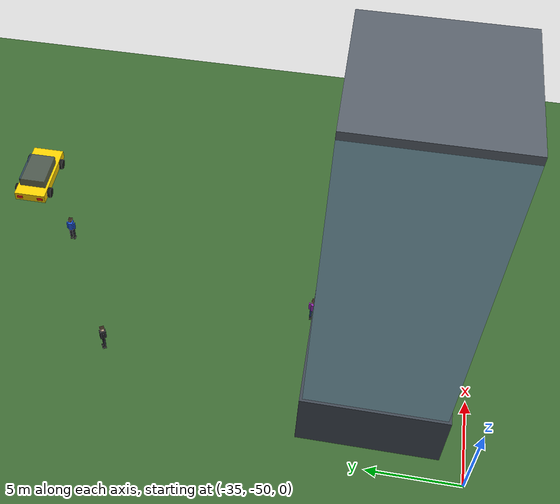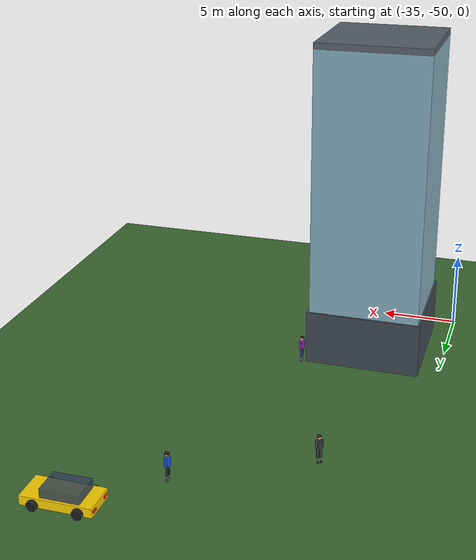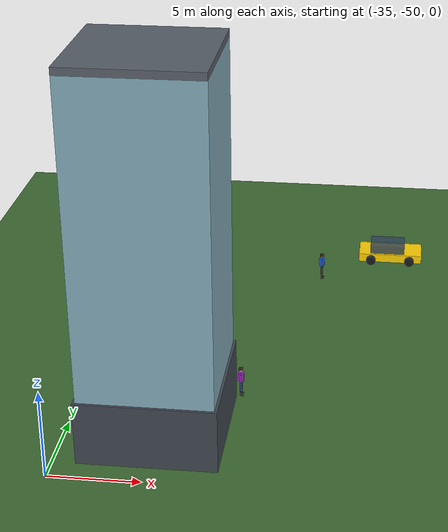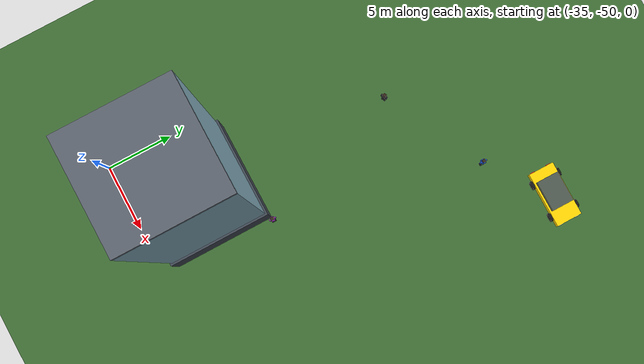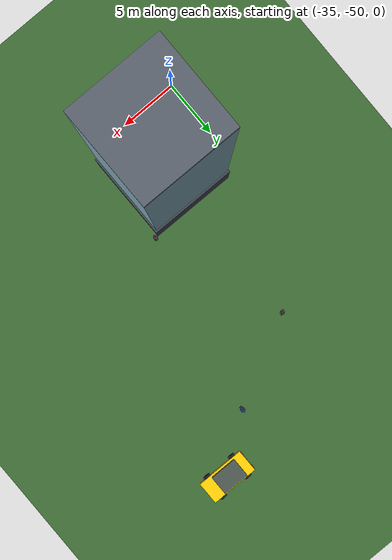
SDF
<sdf version="1.7">
 <world name="city_world">
  <model name="ground_plane">
   <static>true</static>
   <link name="link">
    <collision name="collision">
     <geometry><plane><normal>0 0 1</normal><size>300 300</size></plane></geometry>
     <surface><friction><ode><mu>100</mu><mu2>50</mu2></ode></friction></surface>
    </collision>
    <visual name="visual">
     <geometry><plane><normal>0 0 1</normal><size>300 300</size></plane></geometry>
     <material><ambient>0.24 0.42 0.20 1</ambient><diffuse>0.24 0.42 0.20 1</diffuse></material>
    </visual>
   </link>
  </model>
  <model name="car_13">
   <pose>-18.0 -22.5 0.01 0 0 0.0000</pose>
   <static>true</static>
   <link name="link">
    <visual name="body">
     <pose>0 0 0.45 0 0 0</pose>
     <geometry><box><size>4.2 1.95 0.55</size></box></geometry>
     <material>
      <ambient>1.00 0.82 0.00 1</ambient>
      <diffuse>1.00 0.82 0.00 1</diffuse>
      <specular>0.5 0.5 0.5 1</specular>
     </material>
    </visual>
    <visual name="cabin">
     <pose>-0.2 0 0.95 0 0 0</pose>
     <geometry><box><size>2.3 1.65 0.65</size></box></geometry>
     <material>
      <ambient>0.22 0.30 0.40 0.85</ambient>
      <diffuse>0.22 0.30 0.40 0.85</diffuse>
      <specular>0.7 0.7 0.7 1</specular>
     </material>
    </visual>
    <visual name="hl_l">
     <pose>2.1 0.65 0.45 0 0 0</pose>
     <geometry><box><size>0.08 0.35 0.18</size></box></geometry>
     <material><ambient>1 1 0.8 1</ambient><diffuse>1 1 0.8 1</diffuse><emissive>1 1 0.8 1</emissive></material>
    </visual>
    <visual name="hl_r">
     <pose>2.1 -0.65 0.45 0 0 0</pose>
     <geometry><box><size>0.08 0.35 0.18</size></box></geometry>
     <material><ambient>1 1 0.8 1</ambient><diffuse>1 1 0.8 1</diffuse><emissive>1 1 0.8 1</emissive></material>
    </visual>
    <visual name="tl_l">
     <pose>-2.1 0.65 0.45 0 0 0</pose>
     <geometry><box><size>0.08 0.35 0.18</size></box></geometry>
     <material>
      <ambient>1 0.1 0.1 1</ambient>
      <diffuse>1 0.1 0.1 1</diffuse>
      <emissive>0.8 0 0 1</emissive>
     </material>
    </visual>
    <visual name="tl_r">
     <pose>-2.1 -0.65 0.45 0 0 0</pose>
     <geometry><box><size>0.08 0.35 0.18</size></box></geometry>
     <material>
      <ambient>1 0.1 0.1 1</ambient>
      <diffuse>1 0.1 0.1 1</diffuse>
      <emissive>0.8 0 0 1</emissive>
     </material>
    </visual>
    <visual name="w_fl">
     <pose>1.3 1.05 0.32 1.5708 0 0</pose>
     <geometry><cylinder><radius>0.32</radius><length>0.22</length></cylinder></geometry>
     <material><ambient>0.1 0.1 0.1 1</ambient><diffuse>0.1 0.1 0.1 1</diffuse></material>
    </visual>
    <visual name="w_fr">
     <pose>1.3 -1.05 0.32 1.5708 0 0</pose>
     <geometry><cylinder><radius>0.32</radius><length>0.22</length></cylinder></geometry>
     <material><ambient>0.1 0.1 0.1 1</ambient><diffuse>0.1 0.1 0.1 1</diffuse></material>
    </visual>
    <visual name="w_bl">
     <pose>-1.3 1.05 0.32 1.5708 0 0</pose>
     <geometry><cylinder><radius>0.32</radius><length>0.22</length></cylinder></geometry>
     <material><ambient>0.1 0.1 0.1 1</ambient><diffuse>0.1 0.1 0.1 1</diffuse></material>
    </visual>
    <visual name="w_br">
     <pose>-1.3 -1.05 0.32 1.5708 0 0</pose>
     <geometry><cylinder><radius>0.32</radius><length>0.22</length></cylinder></geometry>
     <material><ambient>0.1 0.1 0.1 1</ambient><diffuse>0.1 0.1 0.1 1</diffuse></material>
    </visual>
   </link>
  </model>
  <model name="pedestrian_1">
   <pose>-22.5 -26.0 0.02 0 0 0.0000</pose>
   <static>true</static>
   <link name="link">
    <visual name="head">
     <pose>0 0 1.62 0 0 0</pose>
     <geometry><sphere><radius>0.13</radius></sphere></geometry>
     <material><ambient>0.65 0.48 0.28 1</ambient><diffuse>0.65 0.48 0.28 1</diffuse></material>
    </visual>
    <visual name="cap">
     <pose>0 -0.02 1.70 0 0 0</pose>
     <geometry><box><size>0.24 0.22 0.10</size></box></geometry>
     <material><ambient>0.2 0.15 0.1 1</ambient><diffuse>0.2 0.15 0.1 1</diffuse></material>
    </visual>
    <visual name="torso">
     <pose>0 0 1.20 0 0 0</pose>
     <geometry><box><size>0.34 0.24 0.52</size></box></geometry>
     <material><ambient>0.12 0.35 0.88 1</ambient><diffuse>0.12 0.35 0.88 1</diffuse></material>
    </visual>
    <visual name="arm_l">
     <pose>0 0.20 1.18 0 0 0</pose>
     <geometry><box><size>0.10 0.10 0.48</size></box></geometry>
     <material><ambient>0.12 0.35 0.88 1</ambient><diffuse>0.12 0.35 0.88 1</diffuse></material>
    </visual>
    <visual name="arm_r">
     <pose>0 -0.20 1.18 0 0 0</pose>
     <geometry><box><size>0.10 0.10 0.48</size></box></geometry>
     <material><ambient>0.12 0.35 0.88 1</ambient><diffuse>0.12 0.35 0.88 1</diffuse></material>
    </visual>
    <visual name="leg_l">
     <pose>0 0.09 0.60 0 0 0</pose>
     <geometry><box><size>0.13 0.13 0.62</size></box></geometry>
     <material><ambient>0.18 0.18 0.22 1</ambient><diffuse>0.18 0.18 0.22 1</diffuse></material>
    </visual>
    <visual name="leg_r">
     <pose>0 -0.09 0.60 0 0 0</pose>
     <geometry><box><size>0.13 0.13 0.62</size></box></geometry>
     <material><ambient>0.18 0.18 0.22 1</ambient><diffuse>0.18 0.18 0.22 1</diffuse></material>
    </visual>
    <visual name="shoe_l">
     <pose>0.04 0.09 0.05 0 0 0</pose>
     <geometry><box><size>0.22 0.13 0.08</size></box></geometry>
     <material><ambient>0.1 0.1 0.1 1</ambient><diffuse>0.1 0.1 0.1 1</diffuse></material>
    </visual>
    <visual name="shoe_r">
     <pose>0.04 -0.09 0.05 0 0 0</pose>
     <geometry><box><size>0.22 0.13 0.08</size></box></geometry>
     <material><ambient>0.1 0.1 0.1 1</ambient><diffuse>0.1 0.1 0.1 1</diffuse></material>
    </visual>
   </link>
  </model>
  <model name="pedestrian_12">
   <pose>-26.0 -41.2 0.04 0 0 0.0000</pose>
   <static>true</static>
   <link name="link">
    <visual name="head">
     <pose>0 0 1.62 0 0 0</pose>
     <geometry><sphere><radius>0.13</radius></sphere></geometry>
     <material><ambient>0.88 0.72 0.55 1</ambient><diffuse>0.88 0.72 0.55 1</diffuse></material>
    </visual>
    <visual name="cap">
     <pose>0 -0.02 1.70 0 0 0</pose>
     <geometry><box><size>0.24 0.22 0.10</size></box></geometry>
     <material><ambient>0.2 0.15 0.1 1</ambient><diffuse>0.2 0.15 0.1 1</diffuse></material>
    </visual>
    <visual name="torso">
     <pose>0 0 1.20 0 0 0</pose>
     <geometry><box><size>0.34 0.24 0.52</size></box></geometry>
     <material><ambient>0.60 0.15 0.72 1</ambient><diffuse>0.60 0.15 0.72 1</diffuse></material>
    </visual>
    <visual name="arm_l">
     <pose>0 0.20 1.18 0 0 0</pose>
     <geometry><box><size>0.10 0.10 0.48</size></box></geometry>
     <material><ambient>0.60 0.15 0.72 1</ambient><diffuse>0.60 0.15 0.72 1</diffuse></material>
    </visual>
    <visual name="arm_r">
     <pose>0 -0.20 1.18 0 0 0</pose>
     <geometry><box><size>0.10 0.10 0.48</size></box></geometry>
     <material><ambient>0.60 0.15 0.72 1</ambient><diffuse>0.60 0.15 0.72 1</diffuse></material>
    </visual>
    <visual name="leg_l">
     <pose>0 0.09 0.60 0 0 0</pose>
     <geometry><box><size>0.13 0.13 0.62</size></box></geometry>
     <material><ambient>0.15 0.25 0.45 1</ambient><diffuse>0.15 0.25 0.45 1</diffuse></material>
    </visual>
    <visual name="leg_r">
     <pose>0 -0.09 0.60 0 0 0</pose>
     <geometry><box><size>0.13 0.13 0.62</size></box></geometry>
     <material><ambient>0.15 0.25 0.45 1</ambient><diffuse>0.15 0.25 0.45 1</diffuse></material>
    </visual>
    <visual name="shoe_l">
     <pose>0.04 0.09 0.05 0 0 0</pose>
     <geometry><box><size>0.22 0.13 0.08</size></box></geometry>
     <material><ambient>0.1 0.1 0.1 1</ambient><diffuse>0.1 0.1 0.1 1</diffuse></material>
    </visual>
    <visual name="shoe_r">
     <pose>0.04 -0.09 0.05 0 0 0</pose>
     <geometry><box><size>0.22 0.13 0.08</size></box></geometry>
     <material><ambient>0.1 0.1 0.1 1</ambient><diffuse>0.1 0.1 0.1 1</diffuse></material>
    </visual>
   </link>
  </model>
  <model name="pedestrian_22">
   <pose>-30.0 -30.0 0.05 0 0 2.0944</pose>
   <static>true</static>
   <link name="link">
    <visual name="head">
     <pose>0 0 1.62 0 0 0</pose>
     <geometry><sphere><radius>0.13</radius></sphere></geometry>
     <material><ambient>0.94 0.80 0.68 1</ambient><diffuse>0.94 0.80 0.68 1</diffuse></material>
    </visual>
    <visual name="cap">
     <pose>0 -0.02 1.70 0 0 0</pose>
     <geometry><box><size>0.24 0.22 0.10</size></box></geometry>
     <material><ambient>0.2 0.15 0.1 1</ambient><diffuse>0.2 0.15 0.1 1</diffuse></material>
    </visual>
    <visual name="torso">
     <pose>0 0 1.20 0 0 0</pose>
     <geometry><box><size>0.34 0.24 0.52</size></box></geometry>
     <material><ambient>0.18 0.18 0.20 1</ambient><diffuse>0.18 0.18 0.20 1</diffuse></material>
    </visual>
    <visual name="arm_l">
     <pose>0 0.20 1.18 0 0 0</pose>
     <geometry><box><size>0.10 0.10 0.48</size></box></geometry>
     <material><ambient>0.18 0.18 0.20 1</ambient><diffuse>0.18 0.18 0.20 1</diffuse></material>
    </visual>
    <visual name="arm_r">
     <pose>0 -0.20 1.18 0 0 0</pose>
     <geometry><box><size>0.10 0.10 0.48</size></box></geometry>
     <material><ambient>0.18 0.18 0.20 1</ambient><diffuse>0.18 0.18 0.20 1</diffuse></material>
    </visual>
    <visual name="leg_l">
     <pose>0 0.09 0.60 0 0 0</pose>
     <geometry><box><size>0.13 0.13 0.62</size></box></geometry>
     <material><ambient>0.18 0.18 0.22 1</ambient><diffuse>0.18 0.18 0.22 1</diffuse></material>
    </visual>
    <visual name="leg_r">
     <pose>0 -0.09 0.60 0 0 0</pose>
     <geometry><box><size>0.13 0.13 0.62</size></box></geometry>
     <material><ambient>0.18 0.18 0.22 1</ambient><diffuse>0.18 0.18 0.22 1</diffuse></material>
    </visual>
    <visual name="shoe_l">
     <pose>0.04 0.09 0.05 0 0 0</pose>
     <geometry><box><size>0.22 0.13 0.08</size></box></geometry>
     <material><ambient>0.1 0.1 0.1 1</ambient><diffuse>0.1 0.1 0.1 1</diffuse></material>
    </visual>
    <visual name="shoe_r">
     <pose>0.04 -0.09 0.05 0 0 0</pose>
     <geometry><box><size>0.22 0.13 0.08</size></box></geometry>
     <material><ambient>0.1 0.1 0.1 1</ambient><diffuse>0.1 0.1 0.1 1</diffuse></material>
    </visual>
   </link>
  </model>
  <model name="building_6">
   <pose>-30.0 -45.0 10.472482684551263 0 0 0</pose>
   <static>true</static>
   <link name="link">
    <collision name="collision"><geometry><box><size>7.20 7.20 20.94</size></box></geometry></collision>
    <visual name="tower">
     <geometry><box><size>7.20 7.20 20.94</size></box></geometry>
     <material>
      <ambient>0.52 0.68 0.74 1</ambient>
      <diffuse>0.52 0.68 0.74 1</diffuse>
      <specular>0.3 0.3 0.3 1</specular>
     </material>
    </visual>
    <visual name="lobby">
     <pose>0 0 -8.67 0 0 0</pose>
     <geometry><box><size>7.50 7.50 3.6</size></box></geometry>
     <material><ambient>0.25 0.28 0.32 1</ambient><diffuse>0.25 0.28 0.32 1</diffuse></material>
    </visual>
    <visual name="parapet">
     <pose>0 0 10.67 0 0 0</pose>
     <geometry><box><size>7.20 7.20 0.4</size></box></geometry>
     <material><ambient>0.35 0.38 0.42 1</ambient><diffuse>0.35 0.38 0.42 1</diffuse></material>
    </visual>
   </link>
  </model>
 </world>
</sdf>
